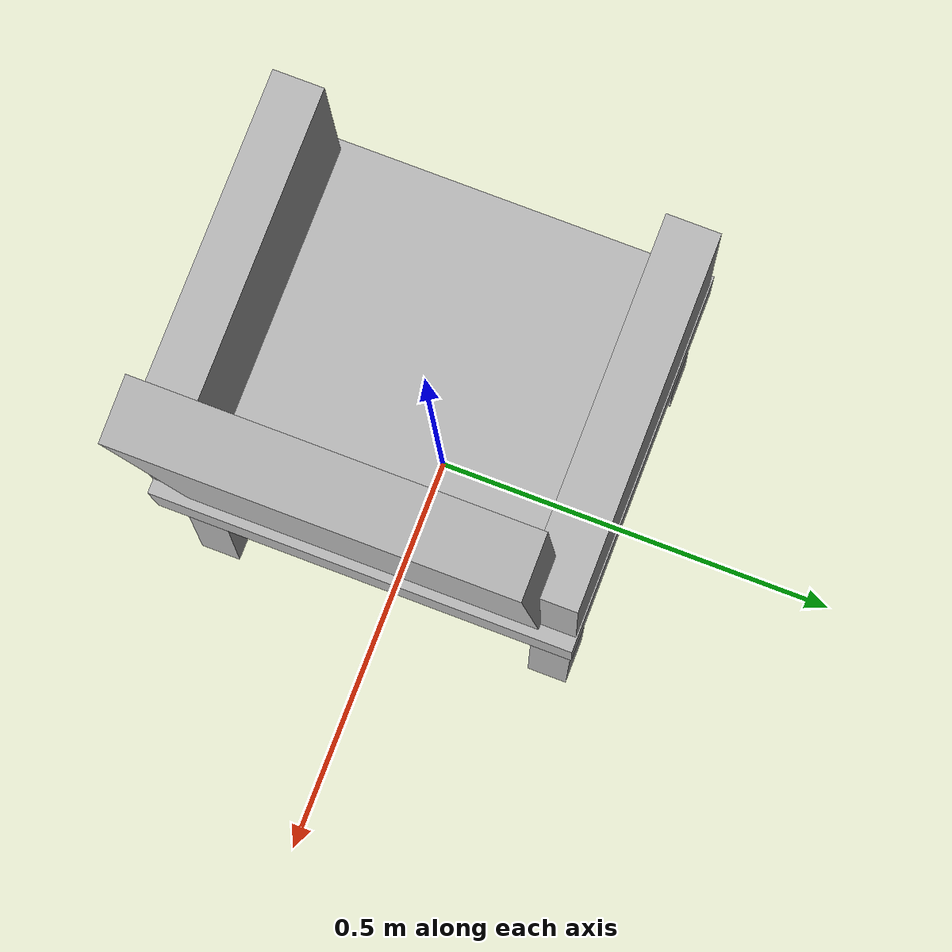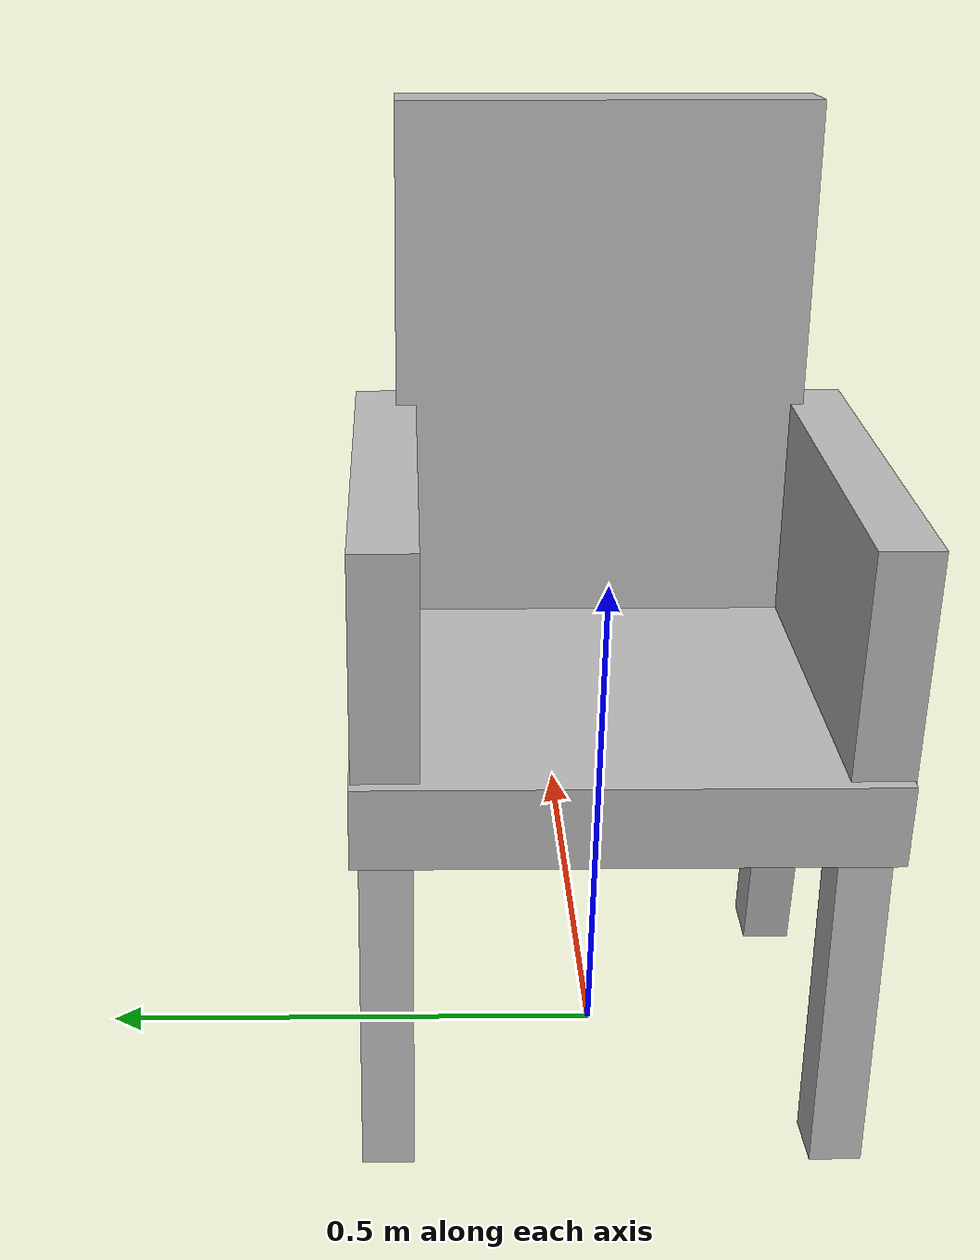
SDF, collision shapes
<?xml version="1.0" ?>
<sdf version="1.6">
  <model name="aws_robomaker_residential_ChairA_01">
    <link name="link">
      <inertial>
          <mass>7.5</mass>
          <inertia>
            <ixy>0</ixy>
            <ixz>0</ixz>
            <iyz>0</iyz>
            <ixx>0.217</ixx>
            <iyy>0.217</iyy>
            <izz>0.067</izz>
          </inertia>
      </inertial>

      <collision name="aws_chaira_01_collision_collider_box">
        <pose>-0.01307 -0.0 0.377813 0.0 -0.0 0.0</pose>
        <geometry>
          <box>
            <size>0.436139 0.483645 0.079336</size>
          </box>
        </geometry>
      </collision>
      <collision name="aws_chaira_01_collision_collider_box.001">
        <pose>0.178182 0.000428 0.64977 0.0 0.0723 0.0</pose>
        <geometry>
          <box>
            <size>0.066191 0.399481 0.533604</size>
          </box>
        </geometry>
      </collision>
      <collision name="aws_chaira_01_collision_collider_box.002">
        <pose>-0.016074 0.210338 0.520987 0.0 -0.0 0.0</pose>
        <geometry>
          <box>
            <size>0.40864 0.059643 0.219694</size>
          </box>
        </geometry>
      </collision>
      <collision name="aws_chaira_01_collision_collider_box.003">
        <pose>-0.016074 -0.215239 0.520987 0.0 -0.0 0.0</pose>
        <geometry>
          <box>
            <size>0.40864 0.056326 0.219694</size>
          </box>
        </geometry>
      </collision>
      <collision name="aws_chaira_01_collision_collider_box.004">
        <pose>-0.182651 0.210338 0.186671 0.0 0.055563 0.0</pose>
        <geometry>
          <box>
            <size>0.054746 0.048883 0.373457</size>
          </box>
        </geometry>
      </collision>
      <collision name="aws_chaira_01_collision_collider_box.005">
        <pose>-0.182651 -0.213921 0.186671 0.0 0.055563 0.0</pose>
        <geometry>
          <box>
            <size>0.054746 0.048883 0.373457</size>
          </box>
        </geometry>
      </collision>
      <collision name="aws_chaira_01_collision_collider_box.006">
        <pose>0.157512 0.210338 0.186448 0.0 -0.073993 0.0</pose>
        <geometry>
          <box>
            <size>0.054746 0.048883 0.373457</size>
          </box>
        </geometry>
      </collision>
      <collision name="aws_chaira_01_collision_collider_box.007">
        <pose>0.157512 -0.213921 0.186448 0.0 -0.073993 0.0</pose>
        <geometry>
          <box>
            <size>0.054746 0.048883 0.373457</size>
          </box>
        </geometry>
      </collision>
      <visual name="visual">
        <geometry>
          <mesh>
            <uri>model://aws_robomaker_residential_ChairA_01/meshes/aws_ChairA_01_visual.DAE</uri>
          </mesh>
        </geometry>
        <meta> <layer> 1 </layer></meta>
      </visual>
    </link>
  </model>
</sdf>
